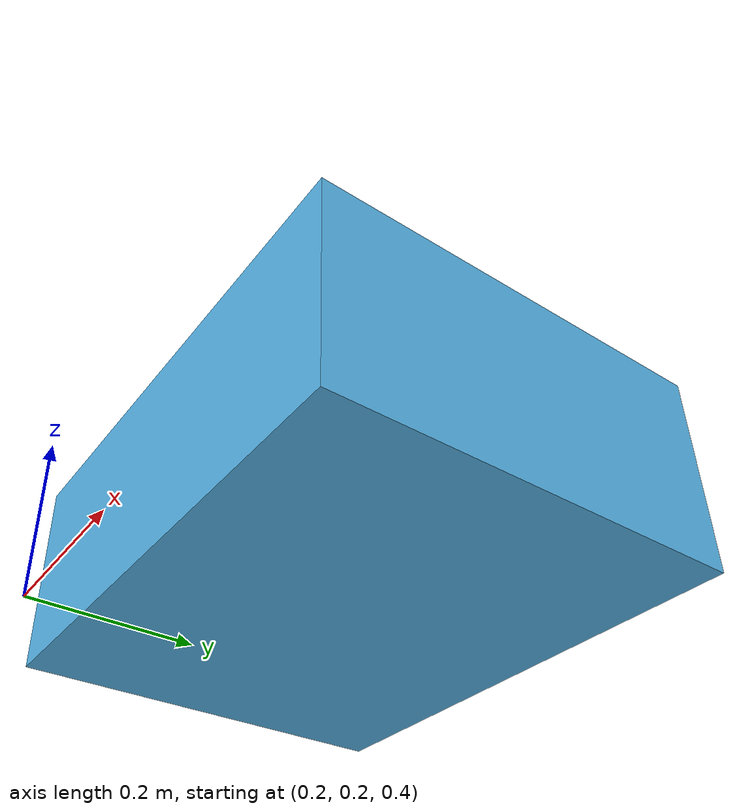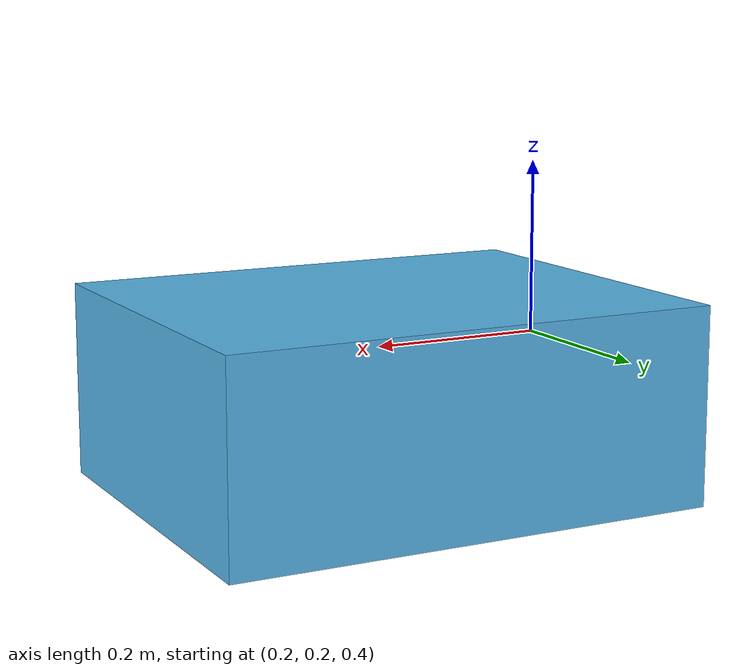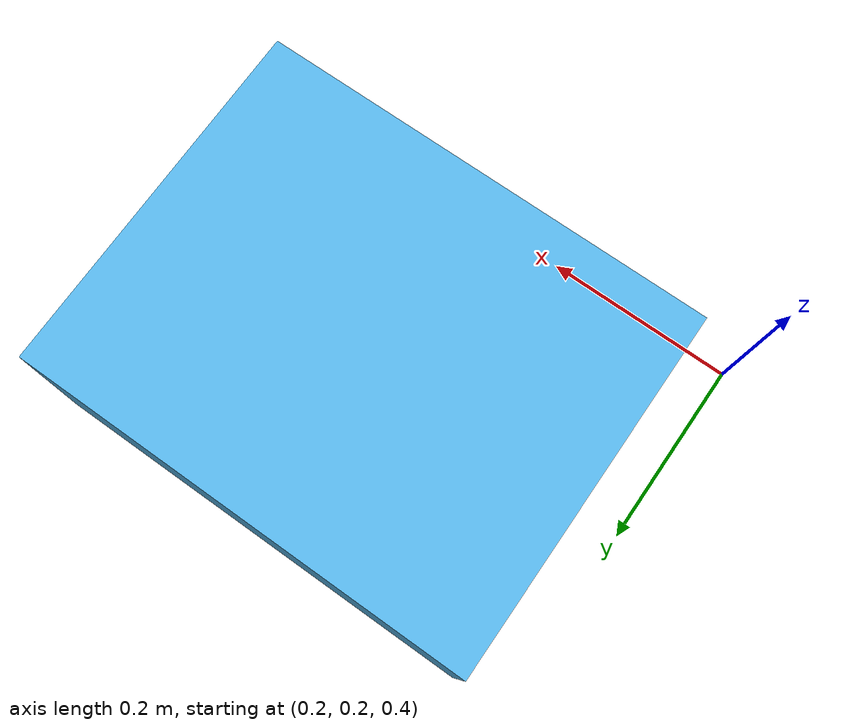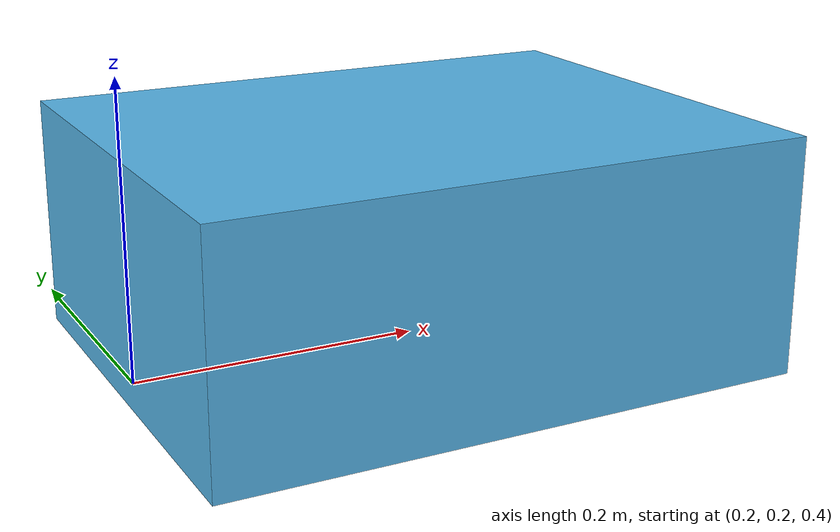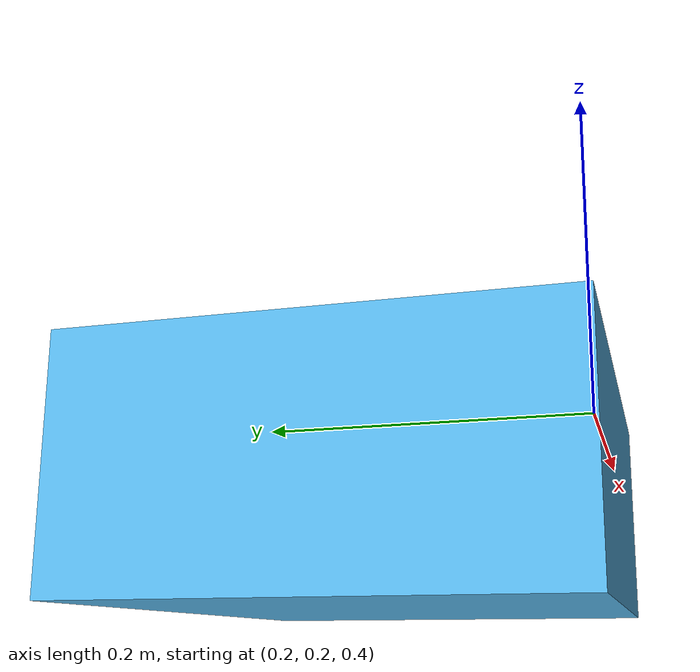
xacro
<?xml version="1.0"?>
<robot xmlns:xacro="http://www.ros.org/wiki/xacro" name="sugar_robot">
  <xacro:property name="PI" value="3.1415926535897931"/>

  <!-- import gazebo reference -->
  <xacro:include filename="$(find sugar_description)/xacro/sugar_robot.gazebo"/>

  <!-- base footprint -->
  <link name="base_footprint"/>

  <!-- base link -->
  <joint name="base_joint" type="fixed">
    <parent link="base_footprint"/>
    <child link="base_link"/>
    <origin xyz="0.0 0.0 0.2" rpy="0 0 0"/>
  </joint>
  <link name="base_link">
    <visual>
      <origin xyz="0.5 0.4 0.2" rpy="0 0 0"/>
      <geometry>
        <box size="0.5 0.4 0.2"/>
      </geometry>
    </visual>
    <collision>
      <origin xyz="0.5 0.4 0.2" rpy="0 0 0"/>
      <geometry>
        <box size="0.5 0.4 0.2"/>
      </geometry>
    </collision>
  </link>

</robot>
